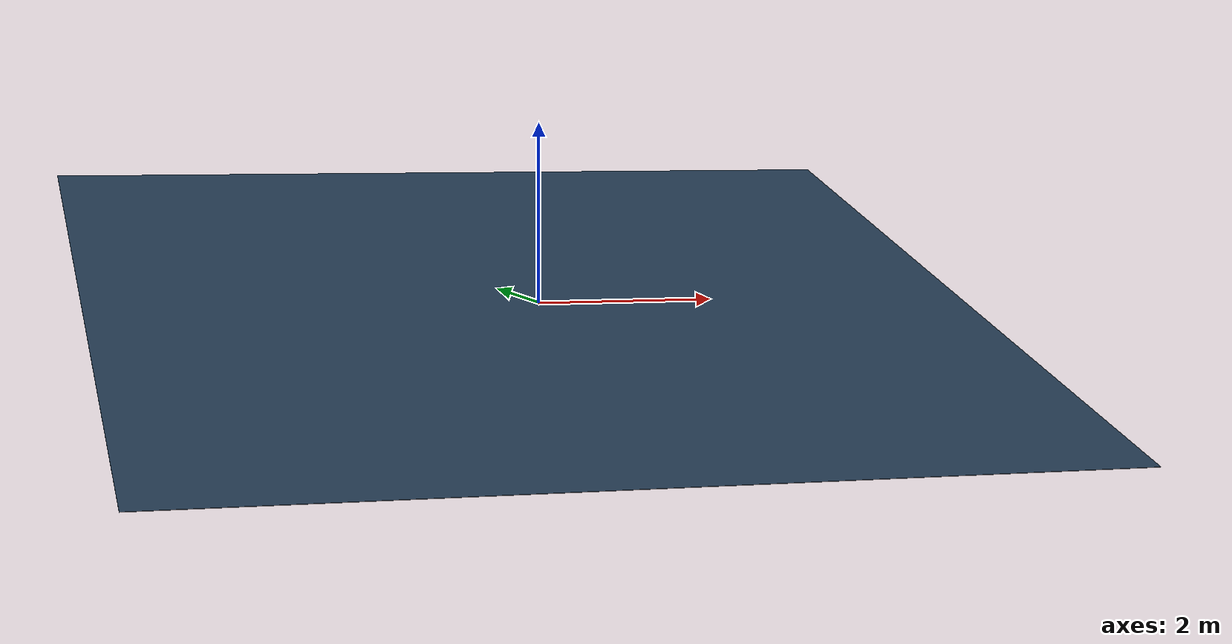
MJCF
<mujoco model="Simple Tilted World">
  <compiler angle="radian"/>

  <option integrator="implicitfast"/>

  <visual>
    <global offwidth="1280" offheight="960"/>
  </visual>

  <asset>
    <texture type="2d" colorspace="auto" name="floor" builtin="checker" rgb1="0.1 0.2 0.3" rgb2="0.2 0.3 0.4" width="600" height="600"/>
    <material name="floor" texture="floor" texuniform="true" texrepeat="3 3"/>
  </asset>

  <worldbody>
    <camera name="ortho-cam" pos="-5 0 5" quat="0.653281 0.270598 -0.270598 -0.653281" orthographic="true" fovy="5"/>
    <light name="light" pos="0 0 1" dir="0 0 -1" type="directional" castshadow="false"/>
    <body name="floor">
      <geom name="floor" size="5 5 0.5" quat="0.991445 0.130526 0 0" type="plane" material="floor"/>
    </body>
  </worldbody>
</mujoco>
